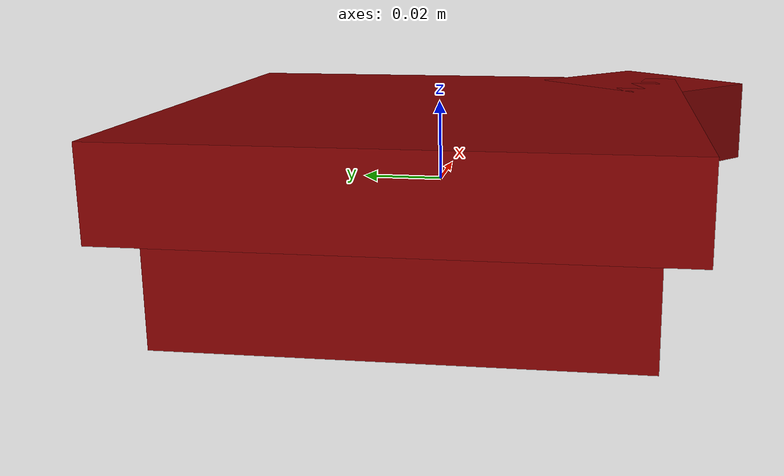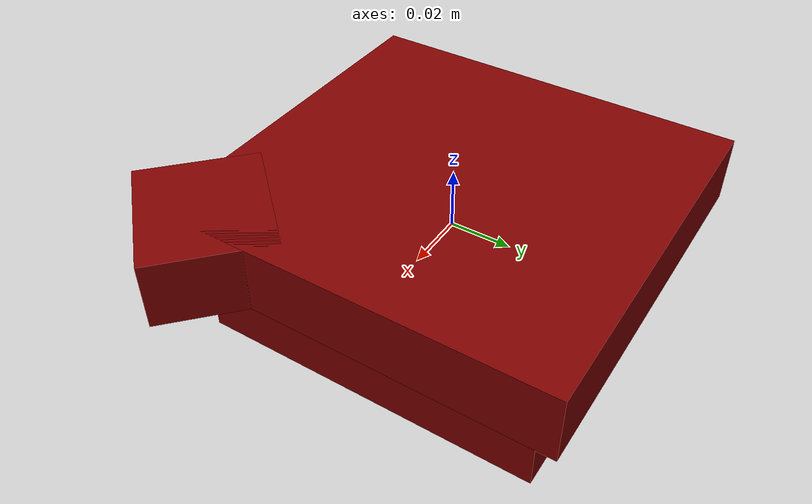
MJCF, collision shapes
<mujoco model="model">
  <option timestep="0.002" gravity="0.0 0.0 -9.81"/>
  <compiler angle="radian"/>
  <asset>
    <texture file="visuals/T_BC001.png" name="lid_material" type="2d"/>
    <material name="lid_material" rgba="1 1 1 1.0" texture="lid_material" shininess="0.5" specular="0.33333333333333337"/>
    <mesh file="visuals/lid.obj" name="lid_vis"/>
  </asset>
  <default>
    <default class="visual">
      <geom conaffinity="0" contype="0" group="1" type="mesh"/>
    </default>
    <default class="collision">
      <geom group="0" rgba="0.5 0 0 0.5"/>
    </default>
    <default class="spawn">
      <geom group="0" rgba="1 1 1 0.5" contype="0" conaffinity="0"/>
      <site group="0" rgba="1 1 1 0.5"/>
    </default>
    <default class="region">
      <geom group="1" conaffinity="0" contype="0" rgba="0 1 0 0"/>
    </default>
  </default>
  <worldbody>
    <body>
      <body name="object">
        <geom mesh="lid_vis" type="mesh" solimp="0.998 0.998 0.001" solref="0.001 1" friction="0.95 0.3 0.1" class="visual" material="lid_material"/>
        <geom class="collision" type="box" pos="-0.0009564373502461748 0.0012037745476380854 0.008424068764004783" size="0.06147725507616997 0.06424625962972641 0.011045503430068493" quat="1.0 0.0 0.0 0.0" density="1000.0"/>
        <geom class="collision" type="box" pos="-0.0009564373502461748 0.0012037745476380854 -0.0135" size="0.0535 0.0555 0.015" quat="1.0 0.0 0.0 0.0" density="1000.0"/>
        <geom class="collision" name="handle_main" type="box" pos="0.051865942649753825 -0.052611505452361915 0.008424068764004783" size="0.02223295532166958 0.01944798417389393 0.011045503430068493" quat="0.9165320992469788 0.0 0.0 0.3999611437320709" density="1000.0"/>
        <geom class="region" name="reg_main" density="0" type="box" pos="0.004379659999999997 -0.00404972 -0.005947679999999999" size="0.066691 0.07065350000000001 0.0257065"/>
      </body>
    </body>
  </worldbody>
</mujoco>
